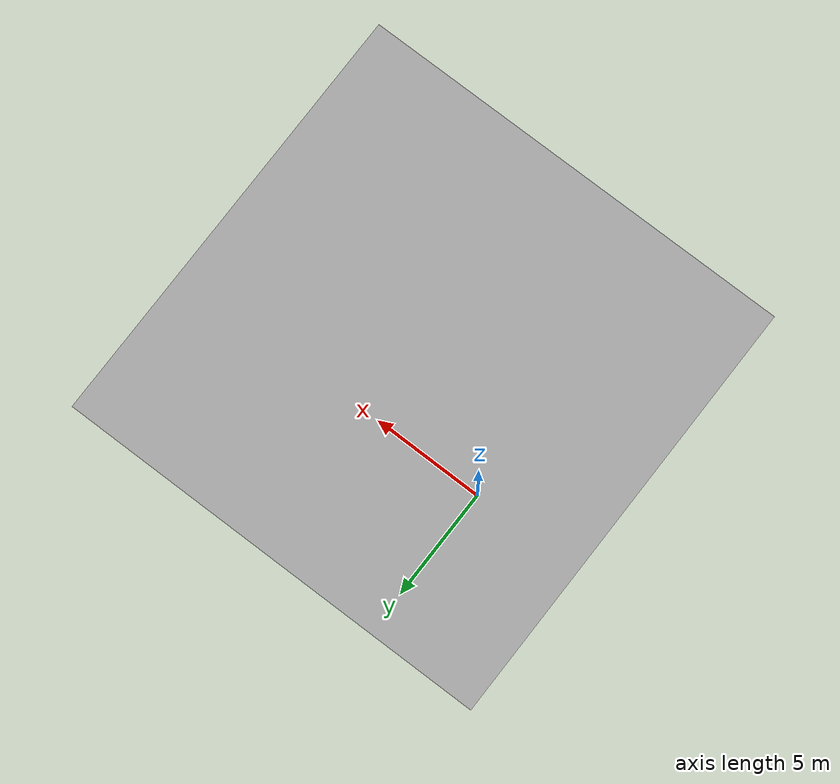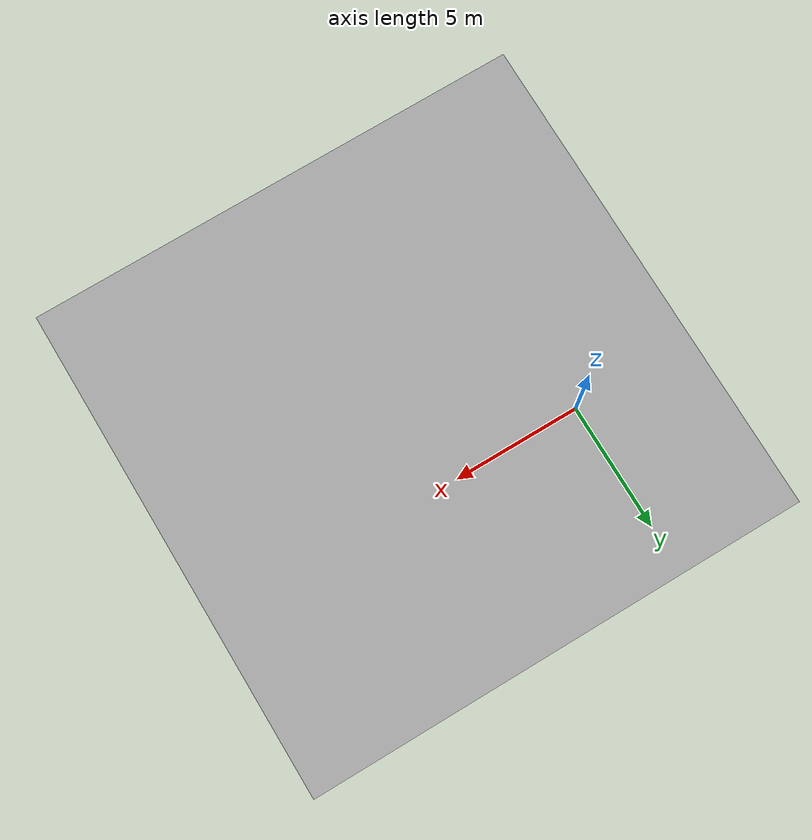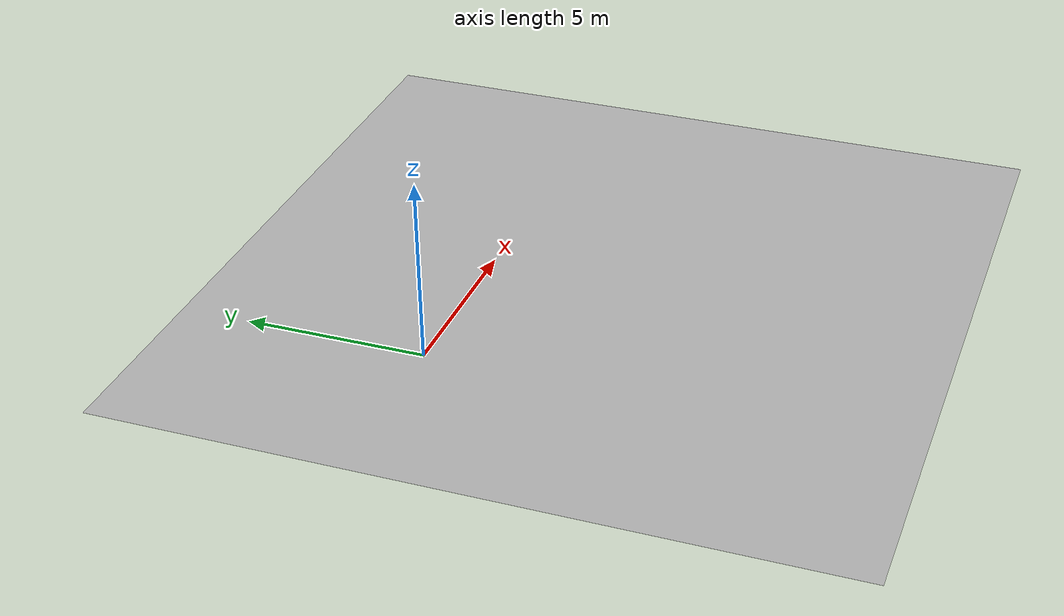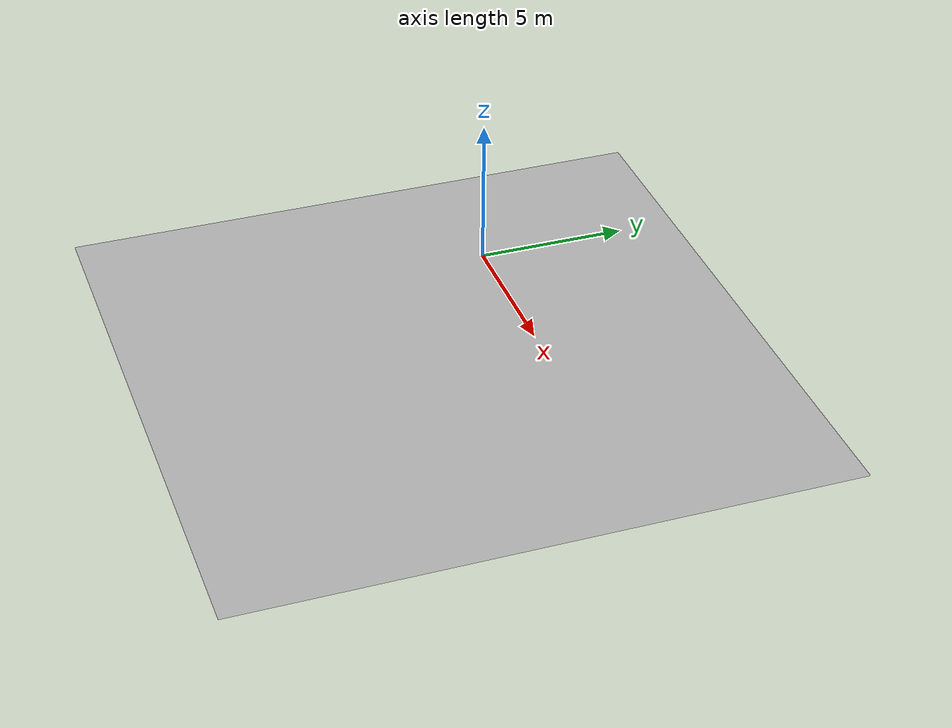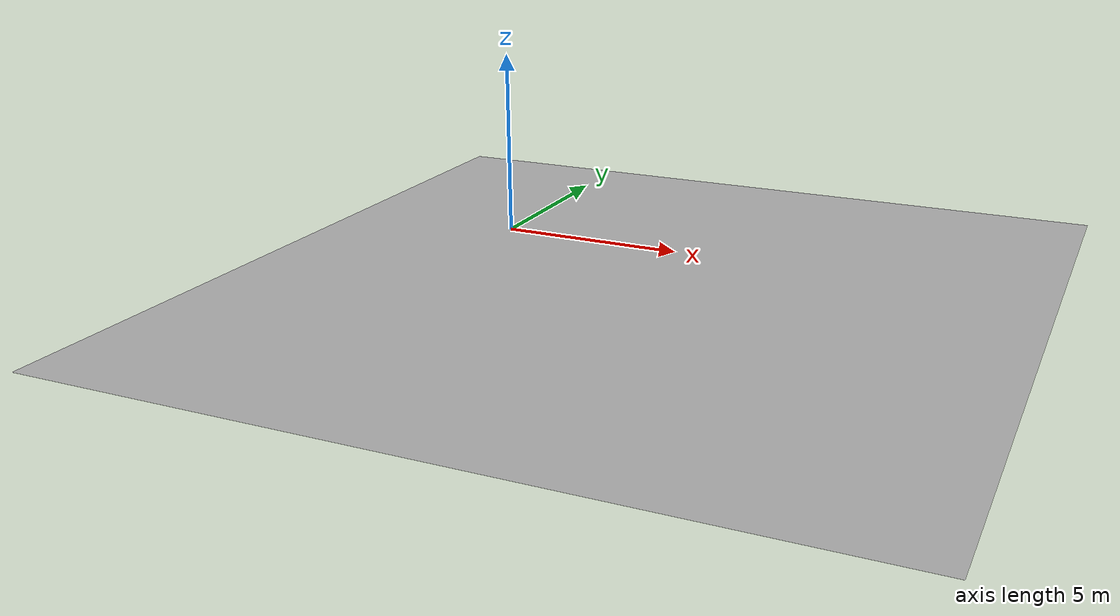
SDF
<?xml version="1.0"?>
<sdf version="1.4">
  <world name="default">
    <model name='ground_plane'>
      <static>1</static>
      <link name='link'>
        <collision name='collision'>
          <geometry>
            <plane>
              <normal>0 0 1</normal>
              <size>100 100</size>
            </plane>
          </geometry>
          <surface>
            <friction>
              <ode>
                <mu>100</mu>
                <mu2>50</mu2>
              </ode>
              <torsional>
                <ode/>
              </torsional>
            </friction>
            <contact>
              <ode/>
            </contact>
            <bounce/>
          </surface>
          <max_contacts>10</max_contacts>
        </collision>
        <visual name='visual'>
          <transparency>1</transparency>
          <cast_shadows>0</cast_shadows>
          <geometry>
            <plane>
              <normal>0 0 1</normal>
              <size>100 100</size>
            </plane>
          </geometry>
          <material>
            <script>
              <uri>file://media/materials/scripts/gazebo.material</uri>
            </script>
          </material>
        </visual>
        <self_collide>0</self_collide>
        <enable_wind>0</enable_wind>
        <kinematic>0</kinematic>
      </link>
    </model>
    <include>
      <uri>model://sun</uri>
    </include>

    <model name="floor">
      <pose>-5 0 -0.4612  0 0 0</pose>
      <static>true</static>
      <link name="body">
        <visual name="visual">
          <geometry>
            <mesh>
               <uri>file:///home/sou/catkin_ws/src/turtlebot3_simulations/turtlebot3_gazebo/models/road_meshes/floor.dae</uri>
               <scale>10 10 0.5</scale>
               </mesh>
          </geometry>
        </visual>
      </link>
    </model>
<!-- plese insert your floor!!!!-->
<!-- plese insert your floor!!!!-->
<!-- plese insert your floor!!!!-->
<!-- plese insert your floor!!!!-->

    <light name='user_directional_light_0' type='directional'>
      <pose frame=''>1.50806 1.18329 3 0 -0 0</pose>
      <diffuse>0.5 0.5 0.5 1</diffuse>
      <specular>0.1 0.1 0.1 1</specular>
      <direction>0.1 0.1 -0.9</direction>
      <attenuation>
        <range>20</range>
        <constant>0.5</constant>
        <linear>0.01</linear>
        <quadratic>0.001</quadratic>
      </attenuation>
      <cast_shadows>1</cast_shadows>
    </light>
    <scene>
      <ambient>0.4 0.4 0.4 1</ambient>
      <background>0.7 0.7 0.7 1</background>
      <shadows>1</shadows>
      <grid>false</grid>
      <origin_visual>false</origin_visual>
    </scene>

    <light name='user_directional_light_1' type='directional'>
      <pose frame=''>1.50806 1.18329 3 0 -0 0</pose>
      <diffuse>0.5 0.7 0.5 1</diffuse>
      <specular>0.1 0.1 0.1 1</specular>
      <direction>0.1 0.1 -0.9</direction>
      <attenuation>
        <range>20</range>
        <constant>0.5</constant>
        <linear>0.01</linear>
        <quadratic>0.001</quadratic>
      </attenuation>
      <cast_shadows>1</cast_shadows>
    </light>
    <scene>
      <ambient>0.4 0.4 0.4 1</ambient>
      <background>0.7 0.7 0.7 1</background>
      <shadows>1</shadows>
      <grid>false</grid>
      <origin_visual>false</origin_visual>
    </scene>

    <gui fullscreen='0'>
      <camera name='user_camera'>
        <pose frame=''>2.73267 0.822723 11.3247 -1e-06 1.5538 1.56418</pose>
        <view_controller>orbit</view_controller>
        <projection_type>perspective</projection_type>
      </camera>
    </gui>

  </world>
</sdf>
